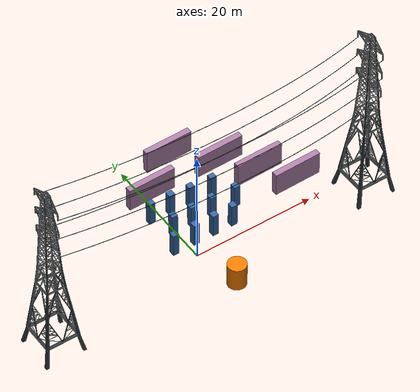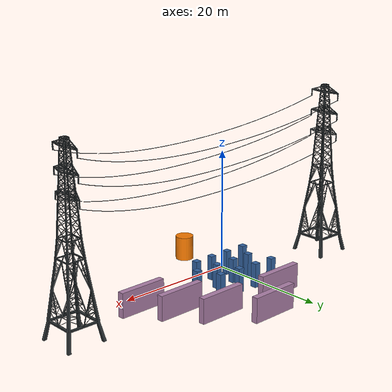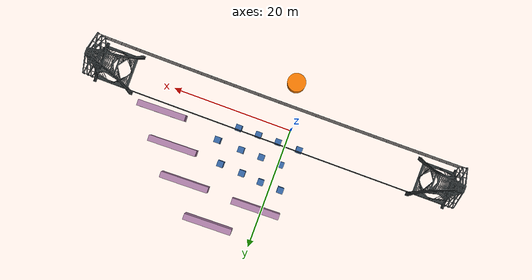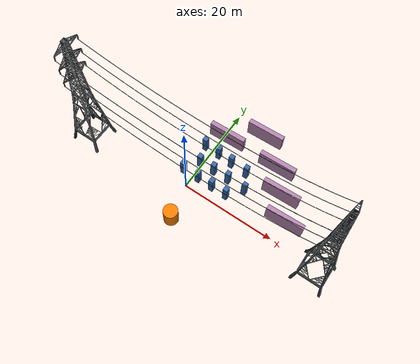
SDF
<sdf version="1.6">
 <world name="vrc_task_1">
  <scene><ambient>0.4 0.4 0.4 1</ambient><background>0.7 0.7 0.7 1</background><shadows>1</shadows></scene>
  <physics name="default_physics" default="0" type="ode">
   <ode>
    <solver>
     <type>quick</type>
     <iters>10</iters>
     <sor>1</sor>
     <use_dynamic_moi_rescaling>0</use_dynamic_moi_rescaling>
    </solver>
    <constraints>
     <cfm>0</cfm>
     <erp>0.2</erp>
     <contact_max_correcting_vel>100</contact_max_correcting_vel>
     <contact_surface_layer>0.001</contact_surface_layer>
    </constraints>
   </ode>
   <max_step_size>0.004</max_step_size>
   <real_time_factor>1</real_time_factor>
   <real_time_update_rate>250</real_time_update_rate>
  </physics>
  <light name="sun" type="directional">
   <pose>0 0 10 0 -0 0</pose>
   <diffuse>0.8 0.8 0.8 1</diffuse>
   <specular>0.2 0.2 0.2 1</specular>
   <attenuation>
    <range>1000</range>
    <constant>0.9</constant>
    <linear>0.01</linear>
    <quadratic>0.001</quadratic>
   </attenuation>
   <direction>-0.5 0.1 -0.9</direction>
  </light>
  <gravity>0 0 -9.8066</gravity>
  <magnetic_field>6e-06 2.3e-05 -4.2e-05</magnetic_field>
  <atmosphere type="adiabatic"/>
  <spherical_coordinates>
   <surface_model>EARTH_WGS84</surface_model>
   <latitude_deg>0</latitude_deg>
   <longitude_deg>0</longitude_deg>
   <elevation>0</elevation>
   <heading_deg>0</heading_deg>
  </spherical_coordinates>
  <audio><device>default</device></audio>
  <model name="unit_cylinder-v1">
   <link name="link">
    <inertial>
     <mass>1</mass>
     <inertia><ixx>0.145833</ixx><ixy>0</ixy><ixz>0</ixz><iyy>0.145833</iyy><iyz>0</iyz><izz>0.125</izz></inertia>
    </inertial>
    <pose>0 0 1.5 0 -0 0</pose>
    <visual name="visual">
     <geometry><cylinder><radius>1.5</radius><length>4</length></cylinder></geometry>
     <material>
      <script><name>Gazebo/Grey</name><uri>file://media/materials/scripts/gazebo.material</uri></script>
      <shader type="vertex"><normal_map>__default__</normal_map></shader>
      <ambient>0.961 0.475 0 1</ambient>
      <diffuse>0.7 0.7 0.7 1</diffuse>
      <specular>0.01 0.01 0.01 1</specular>
      <emissive>0 0 0 1</emissive>
     </material>
    </visual>
    <collision name="collision">
     <geometry><cylinder><radius>1.5</radius><length>4</length></cylinder></geometry>
     <surface>
      <friction>
       <ode><mu>1</mu><mu2>1</mu2><fdir1>0 0 0</fdir1><slip1>0</slip1><slip2>0</slip2></ode>
       <torsional>
        <coefficient>1</coefficient>
        <patch_radius>0</patch_radius>
        <surface_radius>0</surface_radius>
        <use_patch_radius>1</use_patch_radius>
        <ode><slip>0</slip></ode>
       </torsional>
      </friction>
      <bounce><restitution_coefficient>0</restitution_coefficient><threshold>1e+06</threshold></bounce>
      <contact>
       <collide_without_contact>0</collide_without_contact>
       <collide_without_contact_bitmask>1</collide_without_contact_bitmask>
       <collide_bitmask>1</collide_bitmask>
       <ode>
        <soft_cfm>0</soft_cfm>
        <soft_erp>0.2</soft_erp>
        <kp>1e+13</kp>
        <kd>1</kd>
        <max_vel>0.01</max_vel>
        <min_depth>0</min_depth>
       </ode>
       <bullet>
        <split_impulse>1</split_impulse>
        <split_impulse_penetration_threshold>-0.01</split_impulse_penetration_threshold>
        <soft_cfm>0</soft_cfm>
        <soft_erp>0.2</soft_erp>
        <kp>1e+13</kp>
        <kd>1</kd>
       </bullet>
      </contact>
     </surface>
    </collision>
   </link>
   <static>0</static>
   <pose>1.73729 -7.47184 0.49999 1.7e-05 -1.1e-05 0.002467</pose>
  </model>
  <model name="unit_box-v1">
   <link name="link">
    <inertial>
     <mass>1</mass>
     <inertia>
      <ixx>0.166667</ixx>
      <ixy>0</ixy>
      <ixz>0</ixz>
      <iyy>0.166667</iyy>
      <iyz>0</iyz>
      <izz>0.166667</izz>
     </inertia>
    </inertial>
    <pose>0 0 1.5 0 -0 0</pose>
    <visual name="visual">
     <geometry><box><size>1 1 4</size></box></geometry>
     <material>
      <script><name>Gazebo/Grey</name><uri>file://media/materials/scripts/gazebo.material</uri></script>
      <shader type="vertex"><normal_map>__default__</normal_map></shader>
      <ambient>0.204 0.396 0.643 1</ambient>
      <diffuse>0.7 0.7 0.7 1</diffuse>
      <specular>0.01 0.01 0.01 1</specular>
      <emissive>0 0 0 1</emissive>
     </material>
    </visual>
    <collision name="collision">
     <geometry><box><size>1 1 4</size></box></geometry>
     <surface>
      <friction>
       <ode><mu>1</mu><mu2>1</mu2><fdir1>0 0 0</fdir1><slip1>0</slip1><slip2>0</slip2></ode>
       <torsional>
        <coefficient>1</coefficient>
        <patch_radius>0</patch_radius>
        <surface_radius>0</surface_radius>
        <use_patch_radius>1</use_patch_radius>
        <ode><slip>0</slip></ode>
       </torsional>
      </friction>
      <bounce><restitution_coefficient>0</restitution_coefficient><threshold>1e+06</threshold></bounce>
      <contact>
       <collide_without_contact>0</collide_without_contact>
       <collide_without_contact_bitmask>1</collide_without_contact_bitmask>
       <collide_bitmask>1</collide_bitmask>
       <ode>
        <soft_cfm>0</soft_cfm>
        <soft_erp>0.2</soft_erp>
        <kp>1e+13</kp>
        <kd>1</kd>
        <max_vel>0.01</max_vel>
        <min_depth>0</min_depth>
       </ode>
       <bullet>
        <split_impulse>1</split_impulse>
        <split_impulse_penetration_threshold>-0.01</split_impulse_penetration_threshold>
        <soft_cfm>0</soft_cfm>
        <soft_erp>0.2</soft_erp>
        <kp>1e+13</kp>
        <kd>1</kd>
       </bullet>
      </contact>
     </surface>
    </collision>
   </link>
   <static>0</static>
   <pose>1.25788 2.44015 0.499998 -2.4e-05 -3e-06 -0.003044</pose>
  </model>
  <model name="unit_box-v1_clone">
   <link name="link">
    <inertial>
     <mass>1</mass>
     <inertia>
      <ixx>0.166667</ixx>
      <ixy>0</ixy>
      <ixz>0</ixz>
      <iyy>0.166667</iyy>
      <iyz>0</iyz>
      <izz>0.166667</izz>
     </inertia>
    </inertial>
    <pose>0 0 1.5 0 -0 0</pose>
    <visual name="visual">
     <geometry><box><size>1 1 4</size></box></geometry>
     <material>
      <script><name>Gazebo/Grey</name><uri>file://media/materials/scripts/gazebo.material</uri></script>
      <shader type="vertex"><normal_map>__default__</normal_map></shader>
      <ambient>0.204 0.396 0.643 1</ambient>
      <diffuse>0.7 0.7 0.7 1</diffuse>
      <specular>0.01 0.01 0.01 1</specular>
      <emissive>0 0 0 1</emissive>
     </material>
    </visual>
    <collision name="collision">
     <geometry><box><size>1 1 4</size></box></geometry>
     <surface>
      <friction>
       <ode><mu>1</mu><mu2>1</mu2><fdir1>0 0 0</fdir1><slip1>0</slip1><slip2>0</slip2></ode>
       <torsional>
        <coefficient>1</coefficient>
        <patch_radius>0</patch_radius>
        <surface_radius>0</surface_radius>
        <use_patch_radius>1</use_patch_radius>
        <ode><slip>0</slip></ode>
       </torsional>
      </friction>
      <bounce><restitution_coefficient>0</restitution_coefficient><threshold>1e+06</threshold></bounce>
      <contact>
       <collide_without_contact>0</collide_without_contact>
       <collide_without_contact_bitmask>1</collide_without_contact_bitmask>
       <collide_bitmask>1</collide_bitmask>
       <ode>
        <soft_cfm>0</soft_cfm>
        <soft_erp>0.2</soft_erp>
        <kp>1e+13</kp>
        <kd>1</kd>
        <max_vel>0.01</max_vel>
        <min_depth>0</min_depth>
       </ode>
       <bullet>
        <split_impulse>1</split_impulse>
        <split_impulse_penetration_threshold>-0.01</split_impulse_penetration_threshold>
        <soft_cfm>0</soft_cfm>
        <soft_erp>0.2</soft_erp>
        <kp>1e+13</kp>
        <kd>1</kd>
       </bullet>
      </contact>
     </surface>
    </collision>
   </link>
   <static>0</static>
   <pose>4.59565 2.42817 0.499998 -1e-06 2.4e-05 -0.002994</pose>
  </model>
  <model name="unit_box-v1_clone_0">
   <link name="link">
    <inertial>
     <mass>1</mass>
     <inertia>
      <ixx>0.166667</ixx>
      <ixy>0</ixy>
      <ixz>0</ixz>
      <iyy>0.166667</iyy>
      <iyz>0</iyz>
      <izz>0.166667</izz>
     </inertia>
    </inertial>
    <pose>0 0 1.5 0 -0 0</pose>
    <visual name="visual">
     <geometry><box><size>1 1 4</size></box></geometry>
     <material>
      <script><name>Gazebo/Grey</name><uri>file://media/materials/scripts/gazebo.material</uri></script>
      <shader type="vertex"><normal_map>__default__</normal_map></shader>
      <ambient>0.204 0.396 0.643 1</ambient>
      <diffuse>0.7 0.7 0.7 1</diffuse>
      <specular>0.01 0.01 0.01 1</specular>
      <emissive>0 0 0 1</emissive>
     </material>
    </visual>
    <collision name="collision">
     <geometry><box><size>1 1 4</size></box></geometry>
     <surface>
      <friction>
       <ode><mu>1</mu><mu2>1</mu2><fdir1>0 0 0</fdir1><slip1>0</slip1><slip2>0</slip2></ode>
       <torsional>
        <coefficient>1</coefficient>
        <patch_radius>0</patch_radius>
        <surface_radius>0</surface_radius>
        <use_patch_radius>1</use_patch_radius>
        <ode><slip>0</slip></ode>
       </torsional>
      </friction>
      <bounce><restitution_coefficient>0</restitution_coefficient><threshold>1e+06</threshold></bounce>
      <contact>
       <collide_without_contact>0</collide_without_contact>
       <collide_without_contact_bitmask>1</collide_without_contact_bitmask>
       <collide_bitmask>1</collide_bitmask>
       <ode>
        <soft_cfm>0</soft_cfm>
        <soft_erp>0.2</soft_erp>
        <kp>1e+13</kp>
        <kd>1</kd>
        <max_vel>0.01</max_vel>
        <min_depth>0</min_depth>
       </ode>
       <bullet>
        <split_impulse>1</split_impulse>
        <split_impulse_penetration_threshold>-0.01</split_impulse_penetration_threshold>
        <soft_cfm>0</soft_cfm>
        <soft_erp>0.2</soft_erp>
        <kp>1e+13</kp>
        <kd>1</kd>
       </bullet>
      </contact>
     </surface>
    </collision>
   </link>
   <static>0</static>
   <pose>-2.3143 2.48661 0.499998 2.4e-05 -1e-06 -0.003025</pose>
  </model>
  <model name="unit_box-v1_clone_1">
   <link name="link">
    <inertial>
     <mass>1</mass>
     <inertia>
      <ixx>0.166667</ixx>
      <ixy>0</ixy>
      <ixz>0</ixz>
      <iyy>0.166667</iyy>
      <iyz>0</iyz>
      <izz>0.166667</izz>
     </inertia>
    </inertial>
    <pose>0 0 1.5 0 -0 0</pose>
    <visual name="visual">
     <geometry><box><size>1 1 4</size></box></geometry>
     <material>
      <script><name>Gazebo/Grey</name><uri>file://media/materials/scripts/gazebo.material</uri></script>
      <shader type="vertex"><normal_map>__default__</normal_map></shader>
      <ambient>0.204 0.396 0.643 1</ambient>
      <diffuse>0.7 0.7 0.7 1</diffuse>
      <specular>0.01 0.01 0.01 1</specular>
      <emissive>0 0 0 1</emissive>
     </material>
    </visual>
    <collision name="collision">
     <geometry><box><size>1 1 4</size></box></geometry>
     <surface>
      <friction>
       <ode><mu>1</mu><mu2>1</mu2><fdir1>0 0 0</fdir1><slip1>0</slip1><slip2>0</slip2></ode>
       <torsional>
        <coefficient>1</coefficient>
        <patch_radius>0</patch_radius>
        <surface_radius>0</surface_radius>
        <use_patch_radius>1</use_patch_radius>
        <ode><slip>0</slip></ode>
       </torsional>
      </friction>
      <bounce><restitution_coefficient>0</restitution_coefficient><threshold>1e+06</threshold></bounce>
      <contact>
       <collide_without_contact>0</collide_without_contact>
       <collide_without_contact_bitmask>1</collide_without_contact_bitmask>
       <collide_bitmask>1</collide_bitmask>
       <ode>
        <soft_cfm>0</soft_cfm>
        <soft_erp>0.2</soft_erp>
        <kp>1e+13</kp>
        <kd>1</kd>
        <max_vel>0.01</max_vel>
        <min_depth>0</min_depth>
       </ode>
       <bullet>
        <split_impulse>1</split_impulse>
        <split_impulse_penetration_threshold>-0.01</split_impulse_penetration_threshold>
        <soft_cfm>0</soft_cfm>
        <soft_erp>0.2</soft_erp>
        <kp>1e+13</kp>
        <kd>1</kd>
       </bullet>
      </contact>
     </surface>
    </collision>
   </link>
   <static>0</static>
   <pose>7.93143 2.47085 0.499998 -1e-06 2.4e-05 -0.003</pose>
  </model>
  <model name="unit_box-v1_clone_2">
   <link name="link">
    <inertial>
     <mass>1</mass>
     <inertia>
      <ixx>0.166667</ixx>
      <ixy>0</ixy>
      <ixz>0</ixz>
      <iyy>0.166667</iyy>
      <iyz>0</iyz>
      <izz>0.166667</izz>
     </inertia>
    </inertial>
    <pose>0 0 1.5 0 -0 0</pose>
    <visual name="visual">
     <geometry><box><size>1 1 4</size></box></geometry>
     <material>
      <script><name>Gazebo/Grey</name><uri>file://media/materials/scripts/gazebo.material</uri></script>
      <shader type="vertex"><normal_map>__default__</normal_map></shader>
      <ambient>0.204 0.396 0.643 1</ambient>
      <diffuse>0.7 0.7 0.7 1</diffuse>
      <specular>0.01 0.01 0.01 1</specular>
      <emissive>0 0 0 1</emissive>
     </material>
    </visual>
    <collision name="collision">
     <geometry><box><size>1 1 4</size></box></geometry>
     <surface>
      <friction>
       <ode><mu>1</mu><mu2>1</mu2><fdir1>0 0 0</fdir1><slip1>0</slip1><slip2>0</slip2></ode>
       <torsional>
        <coefficient>1</coefficient>
        <patch_radius>0</patch_radius>
        <surface_radius>0</surface_radius>
        <use_patch_radius>1</use_patch_radius>
        <ode><slip>0</slip></ode>
       </torsional>
      </friction>
      <bounce><restitution_coefficient>0</restitution_coefficient><threshold>1e+06</threshold></bounce>
      <contact>
       <collide_without_contact>0</collide_without_contact>
       <collide_without_contact_bitmask>1</collide_without_contact_bitmask>
       <collide_bitmask>1</collide_bitmask>
       <ode>
        <soft_cfm>0</soft_cfm>
        <soft_erp>0.2</soft_erp>
        <kp>1e+13</kp>
        <kd>1</kd>
        <max_vel>0.01</max_vel>
        <min_depth>0</min_depth>
       </ode>
       <bullet>
        <split_impulse>1</split_impulse>
        <split_impulse_penetration_threshold>-0.01</split_impulse_penetration_threshold>
        <soft_cfm>0</soft_cfm>
        <soft_erp>0.2</soft_erp>
        <kp>1e+13</kp>
        <kd>1</kd>
       </bullet>
      </contact>
     </surface>
    </collision>
   </link>
   <static>0</static>
   <pose>6.38993 5.6238 0.499998 2.4e-05 -1e-06 -0.003032</pose>
  </model>
  <model name="unit_box-v1_clone_3">
   <link name="link">
    <inertial>
     <mass>1</mass>
     <inertia>
      <ixx>0.166667</ixx>
      <ixy>0</ixy>
      <ixz>0</ixz>
      <iyy>0.166667</iyy>
      <iyz>0</iyz>
      <izz>0.166667</izz>
     </inertia>
    </inertial>
    <pose>0 0 1.5 0 -0 0</pose>
    <visual name="visual">
     <geometry><box><size>1 1 4</size></box></geometry>
     <material>
      <script><name>Gazebo/Grey</name><uri>file://media/materials/scripts/gazebo.material</uri></script>
      <shader type="vertex"><normal_map>__default__</normal_map></shader>
      <ambient>0.204 0.396 0.643 1</ambient>
      <diffuse>0.7 0.7 0.7 1</diffuse>
      <specular>0.01 0.01 0.01 1</specular>
      <emissive>0 0 0 1</emissive>
     </material>
    </visual>
    <collision name="collision">
     <geometry><box><size>1 1 4</size></box></geometry>
     <surface>
      <friction>
       <ode><mu>1</mu><mu2>1</mu2><fdir1>0 0 0</fdir1><slip1>0</slip1><slip2>0</slip2></ode>
       <torsional>
        <coefficient>1</coefficient>
        <patch_radius>0</patch_radius>
        <surface_radius>0</surface_radius>
        <use_patch_radius>1</use_patch_radius>
        <ode><slip>0</slip></ode>
       </torsional>
      </friction>
      <bounce><restitution_coefficient>0</restitution_coefficient><threshold>1e+06</threshold></bounce>
      <contact>
       <collide_without_contact>0</collide_without_contact>
       <collide_without_contact_bitmask>1</collide_without_contact_bitmask>
       <collide_bitmask>1</collide_bitmask>
       <ode>
        <soft_cfm>0</soft_cfm>
        <soft_erp>0.2</soft_erp>
        <kp>1e+13</kp>
        <kd>1</kd>
        <max_vel>0.01</max_vel>
        <min_depth>0</min_depth>
       </ode>
       <bullet>
        <split_impulse>1</split_impulse>
        <split_impulse_penetration_threshold>-0.01</split_impulse_penetration_threshold>
        <soft_cfm>0</soft_cfm>
        <soft_erp>0.2</soft_erp>
        <kp>1e+13</kp>
        <kd>1</kd>
       </bullet>
      </contact>
     </surface>
    </collision>
   </link>
   <static>0</static>
   <pose>2.93787 5.63514 0.499998 -1e-06 2.4e-05 -0.003007</pose>
  </model>
  <model name="unit_box-v1_clone_4">
   <link name="link">
    <inertial>
     <mass>1</mass>
     <inertia>
      <ixx>0.166667</ixx>
      <ixy>0</ixy>
      <ixz>0</ixz>
      <iyy>0.166667</iyy>
      <iyz>0</iyz>
      <izz>0.166667</izz>
     </inertia>
    </inertial>
    <pose>0 0 1.5 0 -0 0</pose>
    <visual name="visual">
     <geometry><box><size>1 1 4</size></box></geometry>
     <material>
      <script><name>Gazebo/Grey</name><uri>file://media/materials/scripts/gazebo.material</uri></script>
      <shader type="vertex"><normal_map>__default__</normal_map></shader>
      <ambient>0.204 0.396 0.643 1</ambient>
      <diffuse>0.7 0.7 0.7 1</diffuse>
      <specular>0.01 0.01 0.01 1</specular>
      <emissive>0 0 0 1</emissive>
     </material>
    </visual>
    <collision name="collision">
     <geometry><box><size>1 1 4</size></box></geometry>
     <surface>
      <friction>
       <ode><mu>1</mu><mu2>1</mu2><fdir1>0 0 0</fdir1><slip1>0</slip1><slip2>0</slip2></ode>
       <torsional>
        <coefficient>1</coefficient>
        <patch_radius>0</patch_radius>
        <surface_radius>0</surface_radius>
        <use_patch_radius>1</use_patch_radius>
        <ode><slip>0</slip></ode>
       </torsional>
      </friction>
      <bounce><restitution_coefficient>0</restitution_coefficient><threshold>1e+06</threshold></bounce>
      <contact>
       <collide_without_contact>0</collide_without_contact>
       <collide_without_contact_bitmask>1</collide_without_contact_bitmask>
       <collide_bitmask>1</collide_bitmask>
       <ode>
        <soft_cfm>0</soft_cfm>
        <soft_erp>0.2</soft_erp>
        <kp>1e+13</kp>
        <kd>1</kd>
        <max_vel>0.01</max_vel>
        <min_depth>0</min_depth>
       </ode>
       <bullet>
        <split_impulse>1</split_impulse>
        <split_impulse_penetration_threshold>-0.01</split_impulse_penetration_threshold>
        <soft_cfm>0</soft_cfm>
        <soft_erp>0.2</soft_erp>
        <kp>1e+13</kp>
        <kd>1</kd>
       </bullet>
      </contact>
     </surface>
    </collision>
   </link>
   <static>0</static>
   <pose>-0.36247 5.6803 0.499998 2.4e-05 -1e-06 -0.003038</pose>
  </model>
  <model name="unit_box-v1_clone_5">
   <link name="link">
    <inertial>
     <mass>1</mass>
     <inertia>
      <ixx>0.166667</ixx>
      <ixy>0</ixy>
      <ixz>0</ixz>
      <iyy>0.166667</iyy>
      <iyz>0</iyz>
      <izz>0.166667</izz>
     </inertia>
    </inertial>
    <pose>0 0 1.5 0 -0 0</pose>
    <visual name="visual">
     <geometry><box><size>1 1 4</size></box></geometry>
     <material>
      <script><name>Gazebo/Grey</name><uri>file://media/materials/scripts/gazebo.material</uri></script>
      <shader type="vertex"><normal_map>__default__</normal_map></shader>
      <ambient>0.204 0.396 0.643 1</ambient>
      <diffuse>0.7 0.7 0.7 1</diffuse>
      <specular>0.01 0.01 0.01 1</specular>
      <emissive>0 0 0 1</emissive>
     </material>
    </visual>
    <collision name="collision">
     <geometry><box><size>1 1 4</size></box></geometry>
     <surface>
      <friction>
       <ode><mu>1</mu><mu2>1</mu2><fdir1>0 0 0</fdir1><slip1>0</slip1><slip2>0</slip2></ode>
       <torsional>
        <coefficient>1</coefficient>
        <patch_radius>0</patch_radius>
        <surface_radius>0</surface_radius>
        <use_patch_radius>1</use_patch_radius>
        <ode><slip>0</slip></ode>
       </torsional>
      </friction>
      <bounce><restitution_coefficient>0</restitution_coefficient><threshold>1e+06</threshold></bounce>
      <contact>
       <collide_without_contact>0</collide_without_contact>
       <collide_without_contact_bitmask>1</collide_without_contact_bitmask>
       <collide_bitmask>1</collide_bitmask>
       <ode>
        <soft_cfm>0</soft_cfm>
        <soft_erp>0.2</soft_erp>
        <kp>1e+13</kp>
        <kd>1</kd>
        <max_vel>0.01</max_vel>
        <min_depth>0</min_depth>
       </ode>
       <bullet>
        <split_impulse>1</split_impulse>
        <split_impulse_penetration_threshold>-0.01</split_impulse_penetration_threshold>
        <soft_cfm>0</soft_cfm>
        <soft_erp>0.2</soft_erp>
        <kp>1e+13</kp>
        <kd>1</kd>
       </bullet>
      </contact>
     </surface>
    </collision>
   </link>
   <static>0</static>
   <pose>10.4431 5.41243 0.499998 -1e-06 2.4e-05 -0.003013</pose>
  </model>
  <model name="unit_box-v1_clone_6">
   <link name="link">
    <inertial>
     <mass>1</mass>
     <inertia>
      <ixx>0.166667</ixx>
      <ixy>0</ixy>
      <ixz>0</ixz>
      <iyy>0.166667</iyy>
      <iyz>0</iyz>
      <izz>0.166667</izz>
     </inertia>
    </inertial>
    <pose>0 0 1.5 0 -0 0</pose>
    <visual name="visual">
     <geometry><box><size>1 1 4</size></box></geometry>
     <material>
      <script><name>Gazebo/Grey</name><uri>file://media/materials/scripts/gazebo.material</uri></script>
      <shader type="vertex"><normal_map>__default__</normal_map></shader>
      <ambient>0.204 0.396 0.643 1</ambient>
      <diffuse>0.7 0.7 0.7 1</diffuse>
      <specular>0.01 0.01 0.01 1</specular>
      <emissive>0 0 0 1</emissive>
     </material>
    </visual>
    <collision name="collision">
     <geometry><box><size>1 1 4</size></box></geometry>
     <surface>
      <friction>
       <ode><mu>1</mu><mu2>1</mu2><fdir1>0 0 0</fdir1><slip1>0</slip1><slip2>0</slip2></ode>
       <torsional>
        <coefficient>1</coefficient>
        <patch_radius>0</patch_radius>
        <surface_radius>0</surface_radius>
        <use_patch_radius>1</use_patch_radius>
        <ode><slip>0</slip></ode>
       </torsional>
      </friction>
      <bounce><restitution_coefficient>0</restitution_coefficient><threshold>1e+06</threshold></bounce>
      <contact>
       <collide_without_contact>0</collide_without_contact>
       <collide_without_contact_bitmask>1</collide_without_contact_bitmask>
       <collide_bitmask>1</collide_bitmask>
       <ode>
        <soft_cfm>0</soft_cfm>
        <soft_erp>0.2</soft_erp>
        <kp>1e+13</kp>
        <kd>1</kd>
        <max_vel>0.01</max_vel>
        <min_depth>0</min_depth>
       </ode>
       <bullet>
        <split_impulse>1</split_impulse>
        <split_impulse_penetration_threshold>-0.01</split_impulse_penetration_threshold>
        <soft_cfm>0</soft_cfm>
        <soft_erp>0.2</soft_erp>
        <kp>1e+13</kp>
        <kd>1</kd>
       </bullet>
      </contact>
     </surface>
    </collision>
   </link>
   <static>0</static>
   <pose>8.70268 8.85945 0.499998 2.4e-05 -1e-06 -0.003045</pose>
  </model>
  <model name="unit_box-v1_clone_7">
   <link name="link">
    <inertial>
     <mass>1</mass>
     <inertia>
      <ixx>0.166667</ixx>
      <ixy>0</ixy>
      <ixz>0</ixz>
      <iyy>0.166667</iyy>
      <iyz>0</iyz>
      <izz>0.166667</izz>
     </inertia>
    </inertial>
    <pose>0 0 1.5 0 -0 0</pose>
    <visual name="visual">
     <geometry><box><size>1 1 4</size></box></geometry>
     <material>
      <script><name>Gazebo/Grey</name><uri>file://media/materials/scripts/gazebo.material</uri></script>
      <shader type="vertex"><normal_map>__default__</normal_map></shader>
      <ambient>0.204 0.396 0.643 1</ambient>
      <diffuse>0.7 0.7 0.7 1</diffuse>
      <specular>0.01 0.01 0.01 1</specular>
      <emissive>0 0 0 1</emissive>
     </material>
    </visual>
    <collision name="collision">
     <geometry><box><size>1 1 4</size></box></geometry>
     <surface>
      <friction>
       <ode><mu>1</mu><mu2>1</mu2><fdir1>0 0 0</fdir1><slip1>0</slip1><slip2>0</slip2></ode>
       <torsional>
        <coefficient>1</coefficient>
        <patch_radius>0</patch_radius>
        <surface_radius>0</surface_radius>
        <use_patch_radius>1</use_patch_radius>
        <ode><slip>0</slip></ode>
       </torsional>
      </friction>
      <bounce><restitution_coefficient>0</restitution_coefficient><threshold>1e+06</threshold></bounce>
      <contact>
       <collide_without_contact>0</collide_without_contact>
       <collide_without_contact_bitmask>1</collide_without_contact_bitmask>
       <collide_bitmask>1</collide_bitmask>
       <ode>
        <soft_cfm>0</soft_cfm>
        <soft_erp>0.2</soft_erp>
        <kp>1e+13</kp>
        <kd>1</kd>
        <max_vel>0.01</max_vel>
        <min_depth>0</min_depth>
       </ode>
       <bullet>
        <split_impulse>1</split_impulse>
        <split_impulse_penetration_threshold>-0.01</split_impulse_penetration_threshold>
        <soft_cfm>0</soft_cfm>
        <soft_erp>0.2</soft_erp>
        <kp>1e+13</kp>
        <kd>1</kd>
       </bullet>
      </contact>
     </surface>
    </collision>
   </link>
   <static>0</static>
   <pose>4.97594 9.09634 0.499998 -1e-06 2.4e-05 -0.00302</pose>
  </model>
  <model name="unit_box-v1_clone_8">
   <link name="link">
    <inertial>
     <mass>1</mass>
     <inertia>
      <ixx>0.166667</ixx>
      <ixy>0</ixy>
      <ixz>0</ixz>
      <iyy>0.166667</iyy>
      <iyz>0</iyz>
      <izz>0.166667</izz>
     </inertia>
    </inertial>
    <pose>0 0 1.5 0 -0 0</pose>
    <visual name="visual">
     <geometry><box><size>1 1 4</size></box></geometry>
     <material>
      <script><name>Gazebo/Grey</name><uri>file://media/materials/scripts/gazebo.material</uri></script>
      <shader type="vertex"><normal_map>__default__</normal_map></shader>
      <ambient>0.204 0.396 0.643 1</ambient>
      <diffuse>0.7 0.7 0.7 1</diffuse>
      <specular>0.01 0.01 0.01 1</specular>
      <emissive>0 0 0 1</emissive>
     </material>
    </visual>
    <collision name="collision">
     <geometry><box><size>1 1 4</size></box></geometry>
     <surface>
      <friction>
       <ode><mu>1</mu><mu2>1</mu2><fdir1>0 0 0</fdir1><slip1>0</slip1><slip2>0</slip2></ode>
       <torsional>
        <coefficient>1</coefficient>
        <patch_radius>0</patch_radius>
        <surface_radius>0</surface_radius>
        <use_patch_radius>1</use_patch_radius>
        <ode><slip>0</slip></ode>
       </torsional>
      </friction>
      <bounce><restitution_coefficient>0</restitution_coefficient><threshold>1e+06</threshold></bounce>
      <contact>
       <collide_without_contact>0</collide_without_contact>
       <collide_without_contact_bitmask>1</collide_without_contact_bitmask>
       <collide_bitmask>1</collide_bitmask>
       <ode>
        <soft_cfm>0</soft_cfm>
        <soft_erp>0.2</soft_erp>
        <kp>1e+13</kp>
        <kd>1</kd>
        <max_vel>0.01</max_vel>
        <min_depth>0</min_depth>
       </ode>
       <bullet>
        <split_impulse>1</split_impulse>
        <split_impulse_penetration_threshold>-0.01</split_impulse_penetration_threshold>
        <soft_cfm>0</soft_cfm>
        <soft_erp>0.2</soft_erp>
        <kp>1e+13</kp>
        <kd>1</kd>
       </bullet>
      </contact>
     </surface>
    </collision>
   </link>
   <static>0</static>
   <pose>1.69039 9.41364 0.499998 2.4e-05 -1e-06 -0.003051</pose>
  </model>
  <model name="unit_box-v1_clone_9">
   <link name="link">
    <inertial>
     <mass>1</mass>
     <inertia>
      <ixx>0.166667</ixx>
      <ixy>0</ixy>
      <ixz>0</ixz>
      <iyy>0.166667</iyy>
      <iyz>0</iyz>
      <izz>0.166667</izz>
     </inertia>
    </inertial>
    <pose>0 0 1.5 0 -0 0</pose>
    <visual name="visual">
     <geometry><box><size>1 1 4</size></box></geometry>
     <material>
      <script><name>Gazebo/Grey</name><uri>file://media/materials/scripts/gazebo.material</uri></script>
      <shader type="vertex"><normal_map>__default__</normal_map></shader>
      <ambient>0.204 0.396 0.643 1</ambient>
      <diffuse>0.7 0.7 0.7 1</diffuse>
      <specular>0.01 0.01 0.01 1</specular>
      <emissive>0 0 0 1</emissive>
     </material>
    </visual>
    <collision name="collision">
     <geometry><box><size>1 1 4</size></box></geometry>
     <surface>
      <friction>
       <ode><mu>1</mu><mu2>1</mu2><fdir1>0 0 0</fdir1><slip1>0</slip1><slip2>0</slip2></ode>
       <torsional>
        <coefficient>1</coefficient>
        <patch_radius>0</patch_radius>
        <surface_radius>0</surface_radius>
        <use_patch_radius>1</use_patch_radius>
        <ode><slip>0</slip></ode>
       </torsional>
      </friction>
      <bounce><restitution_coefficient>0</restitution_coefficient><threshold>1e+06</threshold></bounce>
      <contact>
       <collide_without_contact>0</collide_without_contact>
       <collide_without_contact_bitmask>1</collide_without_contact_bitmask>
       <collide_bitmask>1</collide_bitmask>
       <ode>
        <soft_cfm>0</soft_cfm>
        <soft_erp>0.2</soft_erp>
        <kp>1e+13</kp>
        <kd>1</kd>
        <max_vel>0.01</max_vel>
        <min_depth>0</min_depth>
       </ode>
       <bullet>
        <split_impulse>1</split_impulse>
        <split_impulse_penetration_threshold>-0.01</split_impulse_penetration_threshold>
        <soft_cfm>0</soft_cfm>
        <soft_erp>0.2</soft_erp>
        <kp>1e+13</kp>
        <kd>1</kd>
       </bullet>
      </contact>
     </surface>
    </collision>
   </link>
   <static>0</static>
   <pose>-1.70536 9.54036 0.499998 1e-06 2.4e-05 -0.003076</pose>
  </model>
  <model name="unit_box-v1_clone_7_clone_clone">
   <link name="link">
    <inertial>
     <mass>1</mass>
     <inertia>
      <ixx>0.166667</ixx>
      <ixy>0</ixy>
      <ixz>0</ixz>
      <iyy>0.166667</iyy>
      <iyz>0</iyz>
      <izz>0.166667</izz>
     </inertia>
    </inertial>
    <pose>0 -0 1.5 0 -0 0</pose>
    <visual name="visual">
     <geometry><box><size>8 1 4</size></box></geometry>
     <material>
      <script><name>Gazebo/Grey</name><uri>file://media/materials/scripts/gazebo.material</uri></script>
      <shader type="vertex"><normal_map>__default__</normal_map></shader>
      <ambient>0.678 0.498 0.659 1</ambient>
      <diffuse>0.7 0.7 0.7 1</diffuse>
      <specular>0.01 0.01 0.01 1</specular>
      <emissive>0 0 0 1</emissive>
     </material>
    </visual>
    <collision name="collision">
     <geometry><box><size>8 1 4</size></box></geometry>
     <surface>
      <friction>
       <ode><mu>1</mu><mu2>1</mu2><fdir1>0 0 0</fdir1><slip1>0</slip1><slip2>0</slip2></ode>
       <torsional>
        <coefficient>1</coefficient>
        <patch_radius>0</patch_radius>
        <surface_radius>0</surface_radius>
        <use_patch_radius>1</use_patch_radius>
        <ode><slip>0</slip></ode>
       </torsional>
      </friction>
      <bounce><restitution_coefficient>0</restitution_coefficient><threshold>1e+06</threshold></bounce>
      <contact>
       <collide_without_contact>0</collide_without_contact>
       <collide_without_contact_bitmask>1</collide_without_contact_bitmask>
       <collide_bitmask>1</collide_bitmask>
       <ode>
        <soft_cfm>0</soft_cfm>
        <soft_erp>0.2</soft_erp>
        <kp>1e+13</kp>
        <kd>1</kd>
        <max_vel>0.01</max_vel>
        <min_depth>0</min_depth>
       </ode>
       <bullet>
        <split_impulse>1</split_impulse>
        <split_impulse_penetration_threshold>-0.01</split_impulse_penetration_threshold>
        <soft_cfm>0</soft_cfm>
        <soft_erp>0.2</soft_erp>
        <kp>1e+13</kp>
        <kd>1</kd>
       </bullet>
      </contact>
     </surface>
    </collision>
   </link>
   <static>0</static>
   <pose>16.8928 8.74907 0.496916 -0.000385 -0.000909 0.02007</pose>
  </model>
  <model name="unit_box-v1_clone_7_clone_clone_clone">
   <link name="link">
    <inertial>
     <mass>1</mass>
     <inertia>
      <ixx>0.166667</ixx>
      <ixy>0</ixy>
      <ixz>0</ixz>
      <iyy>0.166667</iyy>
      <iyz>0</iyz>
      <izz>0.166667</izz>
     </inertia>
    </inertial>
    <pose>0 -0 1.5 0 -0 0</pose>
    <visual name="visual">
     <geometry><box><size>8 1 4</size></box></geometry>
     <material>
      <script><name>Gazebo/Grey</name><uri>file://media/materials/scripts/gazebo.material</uri></script>
      <shader type="vertex"><normal_map>__default__</normal_map></shader>
      <ambient>0.678 0.498 0.659 1</ambient>
      <diffuse>0.7 0.7 0.7 1</diffuse>
      <specular>0.01 0.01 0.01 1</specular>
      <emissive>0 0 0 1</emissive>
     </material>
    </visual>
    <collision name="collision">
     <geometry><box><size>8 1 4</size></box></geometry>
     <surface>
      <friction>
       <ode><mu>1</mu><mu2>1</mu2><fdir1>0 0 0</fdir1><slip1>0</slip1><slip2>0</slip2></ode>
       <torsional>
        <coefficient>1</coefficient>
        <patch_radius>0</patch_radius>
        <surface_radius>0</surface_radius>
        <use_patch_radius>1</use_patch_radius>
        <ode><slip>0</slip></ode>
       </torsional>
      </friction>
      <bounce><restitution_coefficient>0</restitution_coefficient><threshold>1e+06</threshold></bounce>
      <contact>
       <collide_without_contact>0</collide_without_contact>
       <collide_without_contact_bitmask>1</collide_without_contact_bitmask>
       <collide_bitmask>1</collide_bitmask>
       <ode>
        <soft_cfm>0</soft_cfm>
        <soft_erp>0.2</soft_erp>
        <kp>1e+13</kp>
        <kd>1</kd>
        <max_vel>0.01</max_vel>
        <min_depth>0</min_depth>
       </ode>
       <bullet>
        <split_impulse>1</split_impulse>
        <split_impulse_penetration_threshold>-0.01</split_impulse_penetration_threshold>
        <soft_cfm>0</soft_cfm>
        <soft_erp>0.2</soft_erp>
        <kp>1e+13</kp>
        <kd>1</kd>
       </bullet>
      </contact>
     </surface>
    </collision>
   </link>
   <static>0</static>
   <pose>13.1182 13.5683 0.496916 -0.000385 -0.000909 0.02007</pose>
  </model>
  <model name="unit_box-v1_clone_7_clone_clone_clone_clone">
   <link name="link">
    <inertial>
     <mass>1</mass>
     <inertia>
      <ixx>0.166667</ixx>
      <ixy>0</ixy>
      <ixz>0</ixz>
      <iyy>0.166667</iyy>
      <iyz>0</iyz>
      <izz>0.166667</izz>
     </inertia>
    </inertial>
    <pose>0 -0 1.5 0 -0 0</pose>
    <visual name="visual">
     <geometry><box><size>8 1 4</size></box></geometry>
     <material>
      <script><name>Gazebo/Grey</name><uri>file://media/materials/scripts/gazebo.material</uri></script>
      <shader type="vertex"><normal_map>__default__</normal_map></shader>
      <ambient>0.678 0.498 0.659 1</ambient>
      <diffuse>0.7 0.7 0.7 1</diffuse>
      <specular>0.01 0.01 0.01 1</specular>
      <emissive>0 0 0 1</emissive>
     </material>
    </visual>
    <collision name="collision">
     <geometry><box><size>8 1 4</size></box></geometry>
     <surface>
      <friction>
       <ode><mu>1</mu><mu2>1</mu2><fdir1>0 0 0</fdir1><slip1>0</slip1><slip2>0</slip2></ode>
       <torsional>
        <coefficient>1</coefficient>
        <patch_radius>0</patch_radius>
        <surface_radius>0</surface_radius>
        <use_patch_radius>1</use_patch_radius>
        <ode><slip>0</slip></ode>
       </torsional>
      </friction>
      <bounce><restitution_coefficient>0</restitution_coefficient><threshold>1e+06</threshold></bounce>
      <contact>
       <collide_without_contact>0</collide_without_contact>
       <collide_without_contact_bitmask>1</collide_without_contact_bitmask>
       <collide_bitmask>1</collide_bitmask>
       <ode>
        <soft_cfm>0</soft_cfm>
        <soft_erp>0.2</soft_erp>
        <kp>1e+13</kp>
        <kd>1</kd>
        <max_vel>0.01</max_vel>
        <min_depth>0</min_depth>
       </ode>
       <bullet>
        <split_impulse>1</split_impulse>
        <split_impulse_penetration_threshold>-0.01</split_impulse_penetration_threshold>
        <soft_cfm>0</soft_cfm>
        <soft_erp>0.2</soft_erp>
        <kp>1e+13</kp>
        <kd>1</kd>
       </bullet>
      </contact>
     </surface>
    </collision>
   </link>
   <static>0</static>
   <pose>7.34394 18.5926 0.496916 -0.000385 -0.000909 0.02007</pose>
  </model>
  <model name="unit_box-v1_clone_7_clone_clone_clone_clone_0">
   <link name="link">
    <inertial>
     <mass>1</mass>
     <inertia>
      <ixx>0.166667</ixx>
      <ixy>0</ixy>
      <ixz>0</ixz>
      <iyy>0.166667</iyy>
      <iyz>0</iyz>
      <izz>0.166667</izz>
     </inertia>
    </inertial>
    <pose>0 -0 1.5 0 -0 0</pose>
    <visual name="visual">
     <geometry><box><size>8 1 4</size></box></geometry>
     <material>
      <script><name>Gazebo/Grey</name><uri>file://media/materials/scripts/gazebo.material</uri></script>
      <shader type="vertex"><normal_map>__default__</normal_map></shader>
      <ambient>0.678 0.498 0.659 1</ambient>
      <diffuse>0.7 0.7 0.7 1</diffuse>
      <specular>0.01 0.01 0.01 1</specular>
      <emissive>0 0 0 1</emissive>
     </material>
    </visual>
    <collision name="collision">
     <geometry><box><size>8 1 4</size></box></geometry>
     <surface>
      <friction>
       <ode><mu>1</mu><mu2>1</mu2><fdir1>0 0 0</fdir1><slip1>0</slip1><slip2>0</slip2></ode>
       <torsional>
        <coefficient>1</coefficient>
        <patch_radius>0</patch_radius>
        <surface_radius>0</surface_radius>
        <use_patch_radius>1</use_patch_radius>
        <ode><slip>0</slip></ode>
       </torsional>
      </friction>
      <bounce><restitution_coefficient>0</restitution_coefficient><threshold>1e+06</threshold></bounce>
      <contact>
       <collide_without_contact>0</collide_without_contact>
       <collide_without_contact_bitmask>1</collide_without_contact_bitmask>
       <collide_bitmask>1</collide_bitmask>
       <ode>
        <soft_cfm>0</soft_cfm>
        <soft_erp>0.2</soft_erp>
        <kp>1e+13</kp>
        <kd>1</kd>
        <max_vel>0.01</max_vel>
        <min_depth>0</min_depth>
       </ode>
       <bullet>
        <split_impulse>1</split_impulse>
        <split_impulse_penetration_threshold>-0.01</split_impulse_penetration_threshold>
        <soft_cfm>0</soft_cfm>
        <soft_erp>0.2</soft_erp>
        <kp>1e+13</kp>
        <kd>1</kd>
       </bullet>
      </contact>
     </surface>
    </collision>
   </link>
   <static>0</static>
   <pose>1.02727 13.6744 0.496916 -0.000385 -0.000909 0.02007</pose>
  </model>
  <model name="unit_box-v1_clone_7_clone_clone_clone_clone_1">
   <link name="link">
    <inertial>
     <mass>1</mass>
     <inertia>
      <ixx>0.166667</ixx>
      <ixy>0</ixy>
      <ixz>0</ixz>
      <iyy>0.166667</iyy>
      <iyz>0</iyz>
      <izz>0.166667</izz>
     </inertia>
    </inertial>
    <pose>0 -0 1.5 0 -0 0</pose>
    <visual name="visual">
     <geometry><box><size>8 1 4</size></box></geometry>
     <material>
      <script><name>Gazebo/Grey</name><uri>file://media/materials/scripts/gazebo.material</uri></script>
      <shader type="vertex"><normal_map>__default__</normal_map></shader>
      <ambient>0.678 0.498 0.659 1</ambient>
      <diffuse>0.7 0.7 0.7 1</diffuse>
      <specular>0.01 0.01 0.01 1</specular>
      <emissive>0 0 0 1</emissive>
     </material>
    </visual>
    <collision name="collision">
     <geometry><box><size>8 1 4</size></box></geometry>
     <surface>
      <friction>
       <ode><mu>1</mu><mu2>1</mu2><fdir1>0 0 0</fdir1><slip1>0</slip1><slip2>0</slip2></ode>
       <torsional>
        <coefficient>1</coefficient>
        <patch_radius>0</patch_radius>
        <surface_radius>0</surface_radius>
        <use_patch_radius>1</use_patch_radius>
        <ode><slip>0</slip></ode>
       </torsional>
      </friction>
      <bounce><restitution_coefficient>0</restitution_coefficient><threshold>1e+06</threshold></bounce>
      <contact>
       <collide_without_contact>0</collide_without_contact>
       <collide_without_contact_bitmask>1</collide_without_contact_bitmask>
       <collide_bitmask>1</collide_bitmask>
       <ode>
        <soft_cfm>0</soft_cfm>
        <soft_erp>0.2</soft_erp>
        <kp>1e+13</kp>
        <kd>1</kd>
        <max_vel>0.01</max_vel>
        <min_depth>0</min_depth>
       </ode>
       <bullet>
        <split_impulse>1</split_impulse>
        <split_impulse_penetration_threshold>-0.01</split_impulse_penetration_threshold>
        <soft_cfm>0</soft_cfm>
        <soft_erp>0.2</soft_erp>
        <kp>1e+13</kp>
        <kd>1</kd>
       </bullet>
      </contact>
     </surface>
    </collision>
   </link>
   <static>0</static>
   <pose>20.4348 4.06244 0.496916 -0.000385 -0.000909 0.02007</pose>
  </model>
  <model name="my_mesh_el_tower">
   <link name="body">
    <self_collide>1</self_collide>
    <inertial>
     <mass>1000</mass>
     <inertia><ixx>0</ixx><ixy>0</ixy><ixz>0</ixz><iyy>0</iyy><iyz>0</iyz><izz>0</izz></inertia>
    </inertial>
    <visual name="visual">
     <geometry>
      <mesh>
       <uri>/root/catkin_ws/src/px4_fast_planner/worlds/elctric_tower.dae</uri>
       <scale>0.03 0.03 0.03</scale>
      </mesh>
     </geometry>
     <pose>30 0 14.7 1.5708 -0 1.5708</pose>
     <material>
      <shader type="vertex"><normal_map>__default__</normal_map></shader>
      <script><name>ModelPreview_1::body::visual_MATERIAL_</name><uri>__default__</uri></script>
      <ambient>0.333 0.341 0.325 1</ambient>
      <diffuse>0.18 0.204 0.212 1</diffuse>
      <specular>0 0 0 1</specular>
      <emissive>0 0 0 1</emissive>
     </material>
    </visual>
    <collision name="collision_0">
     <pose>30 0 14.7 1.5708 -0 1.5708</pose>
     <geometry>
      <mesh>
       <uri>/root/catkin_ws/src/px4_fast_planner/worlds/elctric_tower.dae</uri>
       <scale>0.03 0.03 0.03</scale>
      </mesh>
     </geometry>
     <surface>
      <friction>
       <ode><mu>1</mu><mu2>1</mu2><fdir1>0 0 0</fdir1><slip1>0</slip1><slip2>0</slip2></ode>
       <torsional>
        <coefficient>1</coefficient>
        <patch_radius>0</patch_radius>
        <surface_radius>0</surface_radius>
        <use_patch_radius>1</use_patch_radius>
        <ode><slip>0</slip></ode>
       </torsional>
      </friction>
      <bounce><restitution_coefficient>0</restitution_coefficient><threshold>1e+06</threshold></bounce>
      <contact>
       <collide_without_contact>0</collide_without_contact>
       <collide_without_contact_bitmask>1</collide_without_contact_bitmask>
       <collide_bitmask>1</collide_bitmask>
       <ode>
        <soft_cfm>0</soft_cfm>
        <soft_erp>0.2</soft_erp>
        <kp>1e+13</kp>
        <kd>1</kd>
        <max_vel>0.01</max_vel>
        <min_depth>0</min_depth>
       </ode>
       <bullet>
        <split_impulse>1</split_impulse>
        <split_impulse_penetration_threshold>-0.01</split_impulse_penetration_threshold>
        <soft_cfm>0</soft_cfm>
        <soft_erp>0.2</soft_erp>
        <kp>1e+13</kp>
        <kd>1</kd>
       </bullet>
      </contact>
     </surface>
    </collision>
   </link>
   <static>1</static>
  </model>
 </world>
</sdf>
